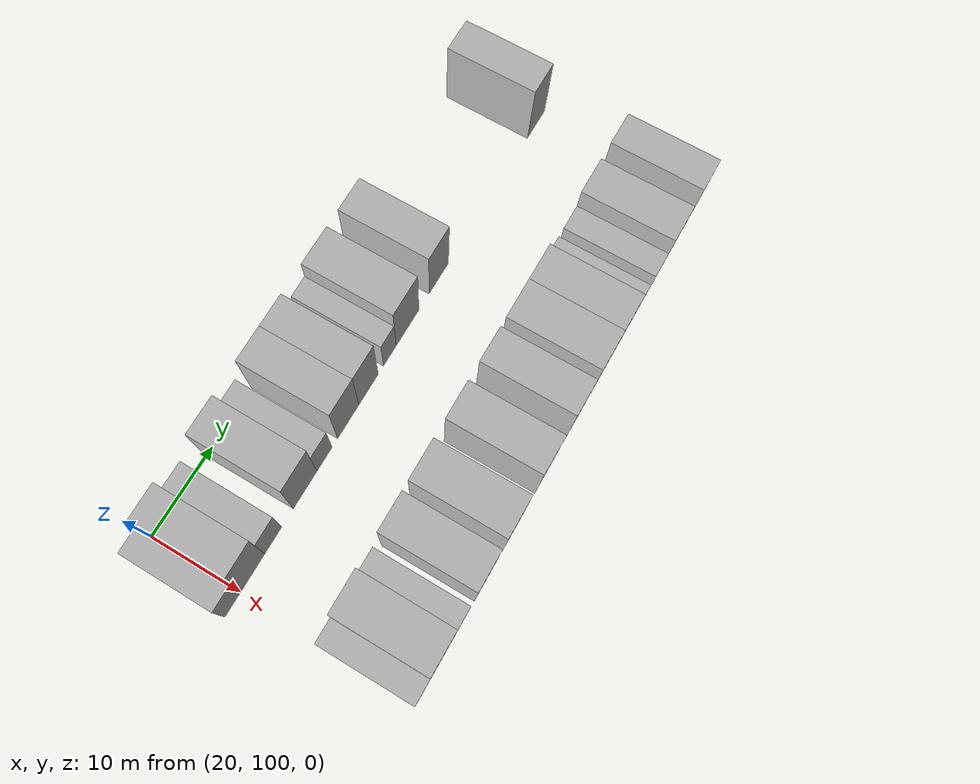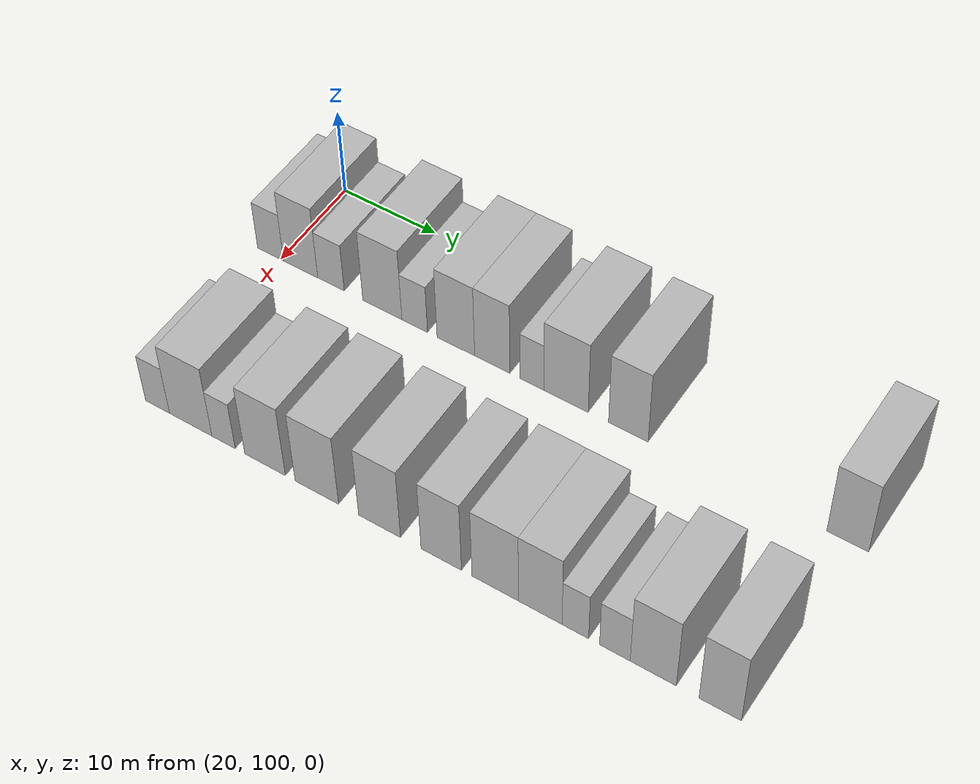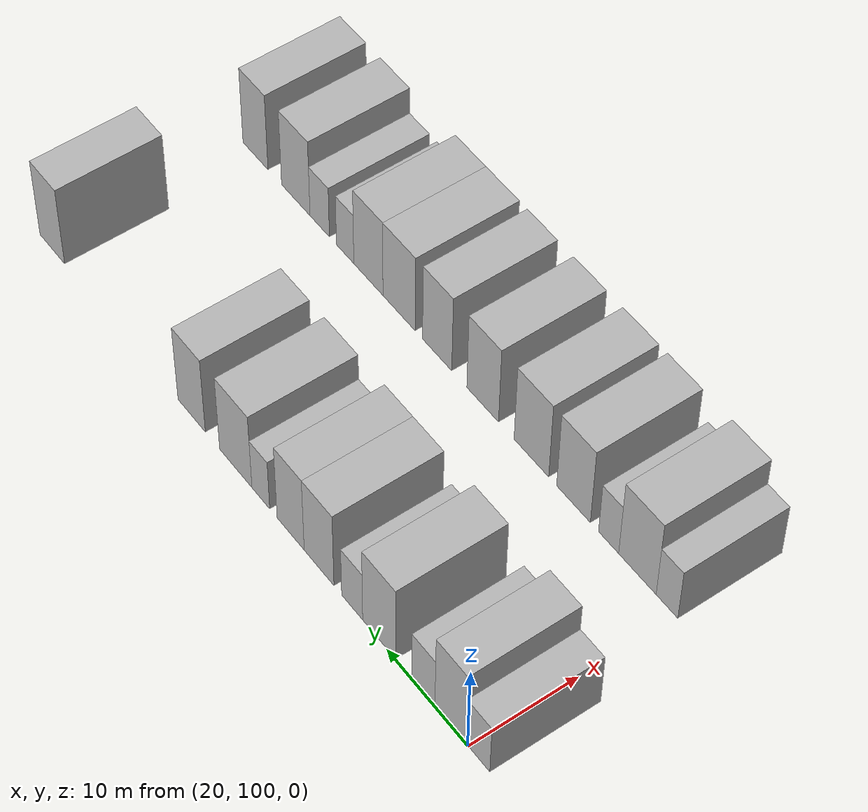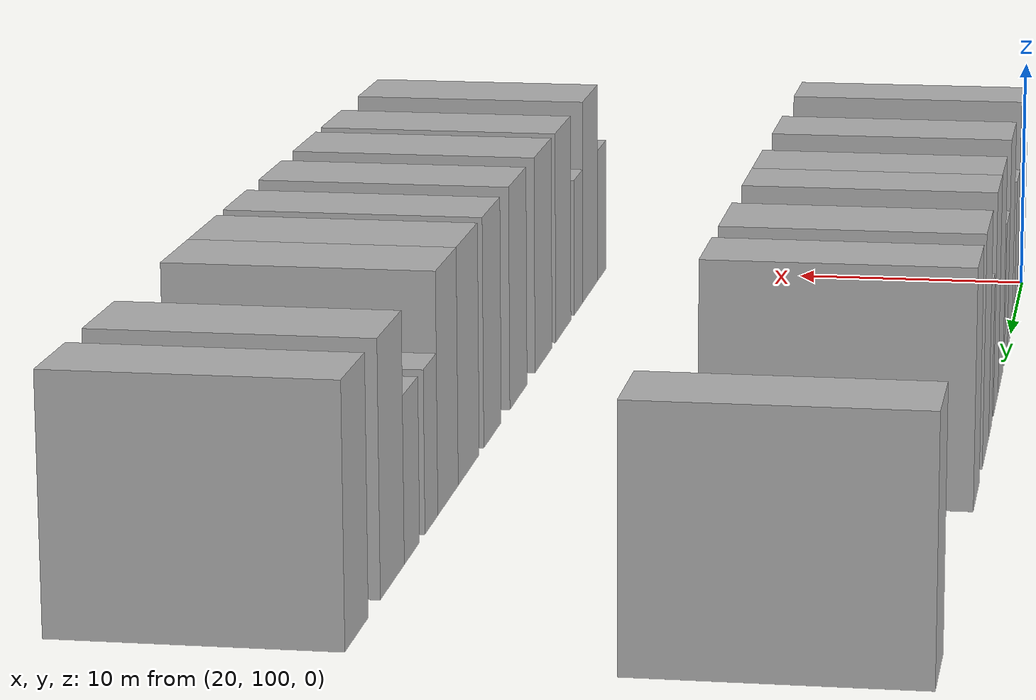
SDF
<sdf version="1.6">
 <world name="default">
  <model name="building_76">
   <static>1</static>
   <pose>25.0000 98.8591 0 0.000000 0.000000 0.000000</pose>
   <link name="link">
    <pose>0 0 3.00 0 0 0</pose>
    <collision name="collision"><geometry><box><size>10.0000 2.8815 6.0000</size></box></geometry></collision>
    <visual name="visual">
     <cast_shadows>0</cast_shadows>
     <geometry><box><size>10.0000 2.8815 6.0000</size></box></geometry>
     <material>
      <script>
       <uri>model://HANNAS_wall/materials/scripts</uri>
       <uri>model://HANNAS_wall/materials/textures</uri>
       <name>vrc/HANNAS_wall</name>
      </script>
     </material>
    </visual>
   </link>
  </model>
  <model name="building_77">
   <static>1</static>
   <pose>25.0000 102.1844 0 0.000000 0.000000 0.000000</pose>
   <link name="link">
    <pose>0 0 4.50 0 0 0</pose>
    <collision name="collision"><geometry><box><size>10.0000 3.7690 9.0000</size></box></geometry></collision>
    <visual name="visual">
     <cast_shadows>0</cast_shadows>
     <geometry><box><size>10.0000 3.7690 9.0000</size></box></geometry>
     <material>
      <script>
       <uri>model://HANNAS_wall/materials/scripts</uri>
       <uri>model://HANNAS_wall/materials/textures</uri>
       <name>vrc/HANNAS_wall</name>
      </script>
     </material>
    </visual>
   </link>
  </model>
  <model name="building_78">
   <static>1</static>
   <pose>25.0000 105.5099 0 0.000000 0.000000 0.000000</pose>
   <link name="link">
    <pose>0 0 3.00 0 0 0</pose>
    <collision name="collision"><geometry><box><size>10.0000 2.8819 6.0000</size></box></geometry></collision>
    <visual name="visual">
     <cast_shadows>0</cast_shadows>
     <geometry><box><size>10.0000 2.8819 6.0000</size></box></geometry>
     <material>
      <script>
       <uri>model://HANNAS_wall/materials/scripts</uri>
       <uri>model://HANNAS_wall/materials/textures</uri>
       <name>vrc/HANNAS_wall</name>
      </script>
     </material>
    </visual>
   </link>
  </model>
  <model name="building_79">
   <static>1</static>
   <pose>25.0000 111.0395 0 0.000000 0.000000 0.000000</pose>
   <link name="link">
    <pose>0 0 4.50 0 0 0</pose>
    <collision name="collision"><geometry><box><size>10.0000 4.1774 9.0000</size></box></geometry></collision>
    <visual name="visual">
     <cast_shadows>0</cast_shadows>
     <geometry><box><size>10.0000 4.1774 9.0000</size></box></geometry>
     <material>
      <script>
       <uri>model://HANNAS_wall/materials/scripts</uri>
       <uri>model://HANNAS_wall/materials/textures</uri>
       <name>vrc/HANNAS_wall</name>
      </script>
     </material>
    </visual>
   </link>
  </model>
  <model name="building_80">
   <static>1</static>
   <pose>25.0000 114.4800 0 0.000000 0.000000 0.000000</pose>
   <link name="link">
    <pose>0 0 3.00 0 0 0</pose>
    <collision name="collision"><geometry><box><size>10.0000 2.7036 6.0000</size></box></geometry></collision>
    <visual name="visual">
     <cast_shadows>0</cast_shadows>
     <geometry><box><size>10.0000 2.7036 6.0000</size></box></geometry>
     <material>
      <script>
       <uri>model://HANNAS_wall/materials/scripts</uri>
       <uri>model://HANNAS_wall/materials/textures</uri>
       <name>vrc/HANNAS_wall</name>
      </script>
     </material>
    </visual>
   </link>
  </model>
  <model name="building_81">
   <static>1</static>
   <pose>25.0000 118.7855 0 0.000000 0.000000 0.000000</pose>
   <link name="link">
    <pose>0 0 4.50 0 0 0</pose>
    <collision name="collision"><geometry><box><size>10.0000 3.9073 9.0000</size></box></geometry></collision>
    <visual name="visual">
     <cast_shadows>0</cast_shadows>
     <geometry><box><size>10.0000 3.9073 9.0000</size></box></geometry>
     <material>
      <script>
       <uri>model://HANNAS_wall/materials/scripts</uri>
       <uri>model://HANNAS_wall/materials/textures</uri>
       <name>vrc/HANNAS_wall</name>
      </script>
     </material>
    </visual>
   </link>
  </model>
  <model name="building_82">
   <static>1</static>
   <pose>25.0000 122.5504 0 0.000000 0.000000 0.000000</pose>
   <link name="link">
    <pose>0 0 4.50 0 0 0</pose>
    <collision name="collision"><geometry><box><size>10.0000 3.6225 9.0000</size></box></geometry></collision>
    <visual name="visual">
     <cast_shadows>0</cast_shadows>
     <geometry><box><size>10.0000 3.6225 9.0000</size></box></geometry>
     <material>
      <script>
       <uri>model://HANNAS_wall/materials/scripts</uri>
       <uri>model://HANNAS_wall/materials/textures</uri>
       <name>vrc/HANNAS_wall</name>
      </script>
     </material>
    </visual>
   </link>
  </model>
  <model name="building_83">
   <static>1</static>
   <pose>25.0000 126.5689 0 0.000000 0.000000 0.000000</pose>
   <link name="link">
    <pose>0 0 3.00 0 0 0</pose>
    <collision name="collision"><geometry><box><size>10.0000 2.4144 6.0000</size></box></geometry></collision>
    <visual name="visual">
     <cast_shadows>0</cast_shadows>
     <geometry><box><size>10.0000 2.4144 6.0000</size></box></geometry>
     <material>
      <script>
       <uri>model://HANNAS_wall/materials/scripts</uri>
       <uri>model://HANNAS_wall/materials/textures</uri>
       <name>vrc/HANNAS_wall</name>
      </script>
     </material>
    </visual>
   </link>
  </model>
  <model name="building_84">
   <static>1</static>
   <pose>25.0000 130.0015 0 0.000000 0.000000 0.000000</pose>
   <link name="link">
    <pose>0 0 4.50 0 0 0</pose>
    <collision name="collision"><geometry><box><size>10.0000 4.4509 9.0000</size></box></geometry></collision>
    <visual name="visual">
     <cast_shadows>0</cast_shadows>
     <geometry><box><size>10.0000 4.4509 9.0000</size></box></geometry>
     <material>
      <script>
       <uri>model://HANNAS_wall/materials/scripts</uri>
       <uri>model://HANNAS_wall/materials/textures</uri>
       <name>vrc/HANNAS_wall</name>
      </script>
     </material>
    </visual>
   </link>
  </model>
  <model name="building_85">
   <static>1</static>
   <pose>25.0000 136.1635 0 0.000000 0.000000 0.000000</pose>
   <link name="link">
    <pose>0 0 4.50 0 0 0</pose>
    <collision name="collision"><geometry><box><size>10.0000 3.8731 9.0000</size></box></geometry></collision>
    <visual name="visual">
     <cast_shadows>0</cast_shadows>
     <geometry><box><size>10.0000 3.8731 9.0000</size></box></geometry>
     <material>
      <script>
       <uri>model://HANNAS_wall/materials/scripts</uri>
       <uri>model://HANNAS_wall/materials/textures</uri>
       <name>vrc/HANNAS_wall</name>
      </script>
     </material>
    </visual>
   </link>
  </model>
  <model name="building_86">
   <static>1</static>
   <pose>25.0000 156.7935 0 0.000000 0.000000 0.000000</pose>
   <link name="link">
    <pose>0 0 4.50 0 0 0</pose>
    <collision name="collision"><geometry><box><size>10.0000 3.7956 9.0000</size></box></geometry></collision>
    <visual name="visual">
     <cast_shadows>0</cast_shadows>
     <geometry><box><size>10.0000 3.7956 9.0000</size></box></geometry>
     <material>
      <script>
       <uri>model://HANNAS_wall/materials/scripts</uri>
       <uri>model://HANNAS_wall/materials/textures</uri>
       <name>vrc/HANNAS_wall</name>
      </script>
     </material>
    </visual>
   </link>
  </model>
  <model name="building_167">
   <static>1</static>
   <pose>44.0000 101.0112 0 0.000000 0.000000 0.000000</pose>
   <link name="link">
    <pose>0 0 3.00 0 0 0</pose>
    <collision name="collision"><geometry><box><size>10.0000 2.5705 6.0000</size></box></geometry></collision>
    <visual name="visual">
     <cast_shadows>0</cast_shadows>
     <geometry><box><size>10.0000 2.5705 6.0000</size></box></geometry>
     <material>
      <script>
       <uri>model://HANNAS_wall/materials/scripts</uri>
       <uri>model://HANNAS_wall/materials/textures</uri>
       <name>vrc/HANNAS_wall</name>
      </script>
     </material>
    </visual>
   </link>
  </model>
  <model name="building_168">
   <static>1</static>
   <pose>44.0000 104.5457 0 0.000000 0.000000 0.000000</pose>
   <link name="link">
    <pose>0 0 4.50 0 0 0</pose>
    <collision name="collision"><geometry><box><size>10.0000 4.4985 9.0000</size></box></geometry></collision>
    <visual name="visual">
     <cast_shadows>0</cast_shadows>
     <geometry><box><size>10.0000 4.4985 9.0000</size></box></geometry>
     <material>
      <script>
       <uri>model://HANNAS_wall/materials/scripts</uri>
       <uri>model://HANNAS_wall/materials/textures</uri>
       <name>vrc/HANNAS_wall</name>
      </script>
     </material>
    </visual>
   </link>
  </model>
  <model name="building_169">
   <static>1</static>
   <pose>44.0000 108.0178 0 0.000000 0.000000 0.000000</pose>
   <link name="link">
    <pose>0 0 3.00 0 0 0</pose>
    <collision name="collision"><geometry><box><size>10.0000 2.4456 6.0000</size></box></geometry></collision>
    <visual name="visual">
     <cast_shadows>0</cast_shadows>
     <geometry><box><size>10.0000 2.4456 6.0000</size></box></geometry>
     <material>
      <script>
       <uri>model://HANNAS_wall/materials/scripts</uri>
       <uri>model://HANNAS_wall/materials/textures</uri>
       <name>vrc/HANNAS_wall</name>
      </script>
     </material>
    </visual>
   </link>
  </model>
  <model name="building_170">
   <static>1</static>
   <pose>44.0000 112.3366 0 0.000000 0.000000 0.000000</pose>
   <link name="link">
    <pose>0 0 4.50 0 0 0</pose>
    <collision name="collision"><geometry><box><size>10.0000 4.1920 9.0000</size></box></geometry></collision>
    <visual name="visual">
     <cast_shadows>0</cast_shadows>
     <geometry><box><size>10.0000 4.1920 9.0000</size></box></geometry>
     <material>
      <script>
       <uri>model://HANNAS_wall/materials/scripts</uri>
       <uri>model://HANNAS_wall/materials/textures</uri>
       <name>vrc/HANNAS_wall</name>
      </script>
     </material>
    </visual>
   </link>
  </model>
  <model name="building_171">
   <static>1</static>
   <pose>44.0000 117.6333 0 0.000000 0.000000 0.000000</pose>
   <link name="link">
    <pose>0 0 4.50 0 0 0</pose>
    <collision name="collision"><geometry><box><size>10.0000 4.4015 9.0000</size></box></geometry></collision>
    <visual name="visual">
     <cast_shadows>0</cast_shadows>
     <geometry><box><size>10.0000 4.4015 9.0000</size></box></geometry>
     <material>
      <script>
       <uri>model://HANNAS_wall/materials/scripts</uri>
       <uri>model://HANNAS_wall/materials/textures</uri>
       <name>vrc/HANNAS_wall</name>
      </script>
     </material>
    </visual>
   </link>
  </model>
  <model name="building_172">
   <static>1</static>
   <pose>44.0000 123.9047 0 0.000000 0.000000 0.000000</pose>
   <link name="link">
    <pose>0 0 4.50 0 0 0</pose>
    <collision name="collision"><geometry><box><size>10.0000 4.1411 9.0000</size></box></geometry></collision>
    <visual name="visual">
     <cast_shadows>0</cast_shadows>
     <geometry><box><size>10.0000 4.1411 9.0000</size></box></geometry>
     <material>
      <script>
       <uri>model://HANNAS_wall/materials/scripts</uri>
       <uri>model://HANNAS_wall/materials/textures</uri>
       <name>vrc/HANNAS_wall</name>
      </script>
     </material>
    </visual>
   </link>
  </model>
  <model name="building_173">
   <static>1</static>
   <pose>44.0000 129.9320 0 0.000000 0.000000 0.000000</pose>
   <link name="link">
    <pose>0 0 4.50 0 0 0</pose>
    <collision name="collision"><geometry><box><size>10.0000 3.9136 9.0000</size></box></geometry></collision>
    <visual name="visual">
     <cast_shadows>0</cast_shadows>
     <geometry><box><size>10.0000 3.9136 9.0000</size></box></geometry>
     <material>
      <script>
       <uri>model://HANNAS_wall/materials/scripts</uri>
       <uri>model://HANNAS_wall/materials/textures</uri>
       <name>vrc/HANNAS_wall</name>
      </script>
     </material>
    </visual>
   </link>
  </model>
  <model name="building_174">
   <static>1</static>
   <pose>44.0000 135.0901 0 0.000000 0.000000 0.000000</pose>
   <link name="link">
    <pose>0 0 4.50 0 0 0</pose>
    <collision name="collision"><geometry><box><size>10.0000 4.4026 9.0000</size></box></geometry></collision>
    <visual name="visual">
     <cast_shadows>0</cast_shadows>
     <geometry><box><size>10.0000 4.4026 9.0000</size></box></geometry>
     <material>
      <script>
       <uri>model://HANNAS_wall/materials/scripts</uri>
       <uri>model://HANNAS_wall/materials/textures</uri>
       <name>vrc/HANNAS_wall</name>
      </script>
     </material>
    </visual>
   </link>
  </model>
  <model name="building_175">
   <static>1</static>
   <pose>44.0000 139.3220 0 0.000000 0.000000 0.000000</pose>
   <link name="link">
    <pose>0 0 4.50 0 0 0</pose>
    <collision name="collision"><geometry><box><size>10.0000 4.0610 9.0000</size></box></geometry></collision>
    <visual name="visual">
     <cast_shadows>0</cast_shadows>
     <geometry><box><size>10.0000 4.0610 9.0000</size></box></geometry>
     <material>
      <script>
       <uri>model://HANNAS_wall/materials/scripts</uri>
       <uri>model://HANNAS_wall/materials/textures</uri>
       <name>vrc/HANNAS_wall</name>
      </script>
     </material>
    </visual>
   </link>
  </model>
  <model name="building_176">
   <static>1</static>
   <pose>44.0000 142.5770 0 0.000000 0.000000 0.000000</pose>
   <link name="link">
    <pose>0 0 3.00 0 0 0</pose>
    <collision name="collision"><geometry><box><size>10.0000 2.4490 6.0000</size></box></geometry></collision>
    <visual name="visual">
     <cast_shadows>0</cast_shadows>
     <geometry><box><size>10.0000 2.4490 6.0000</size></box></geometry>
     <material>
      <script>
       <uri>model://HANNAS_wall/materials/scripts</uri>
       <uri>model://HANNAS_wall/materials/textures</uri>
       <name>vrc/HANNAS_wall</name>
      </script>
     </material>
    </visual>
   </link>
  </model>
  <model name="building_177">
   <static>1</static>
   <pose>44.0000 146.1902 0 0.000000 0.000000 0.000000</pose>
   <link name="link">
    <pose>0 0 3.00 0 0 0</pose>
    <collision name="collision"><geometry><box><size>10.0000 2.7776 6.0000</size></box></geometry></collision>
    <visual name="visual">
     <cast_shadows>0</cast_shadows>
     <geometry><box><size>10.0000 2.7776 6.0000</size></box></geometry>
     <material>
      <script>
       <uri>model://HANNAS_wall/materials/scripts</uri>
       <uri>model://HANNAS_wall/materials/textures</uri>
       <name>vrc/HANNAS_wall</name>
      </script>
     </material>
    </visual>
   </link>
  </model>
  <model name="building_178">
   <static>1</static>
   <pose>44.0000 149.6472 0 0.000000 0.000000 0.000000</pose>
   <link name="link">
    <pose>0 0 4.50 0 0 0</pose>
    <collision name="collision"><geometry><box><size>10.0000 4.1362 9.0000</size></box></geometry></collision>
    <visual name="visual">
     <cast_shadows>0</cast_shadows>
     <geometry><box><size>10.0000 4.1362 9.0000</size></box></geometry>
     <material>
      <script>
       <uri>model://HANNAS_wall/materials/scripts</uri>
       <uri>model://HANNAS_wall/materials/textures</uri>
       <name>vrc/HANNAS_wall</name>
      </script>
     </material>
    </visual>
   </link>
  </model>
  <model name="building_179">
   <static>1</static>
   <pose>44.0000 155.5721 0 0.000000 0.000000 0.000000</pose>
   <link name="link">
    <pose>0 0 4.50 0 0 0</pose>
    <collision name="collision"><geometry><box><size>10.0000 3.7136 9.0000</size></box></geometry></collision>
    <visual name="visual">
     <cast_shadows>0</cast_shadows>
     <geometry><box><size>10.0000 3.7136 9.0000</size></box></geometry>
     <material>
      <script>
       <uri>model://HANNAS_wall/materials/scripts</uri>
       <uri>model://HANNAS_wall/materials/textures</uri>
       <name>vrc/HANNAS_wall</name>
      </script>
     </material>
    </visual>
   </link>
  </model>
 </world>
</sdf>
